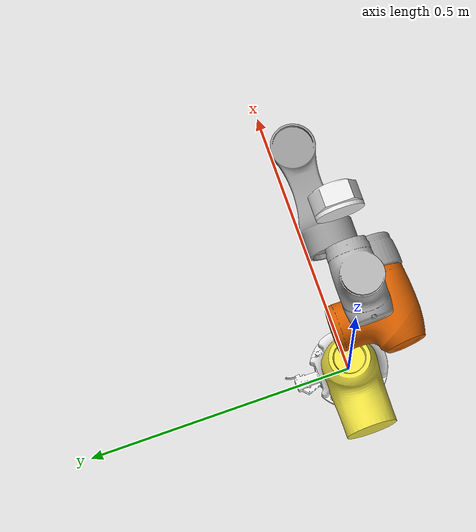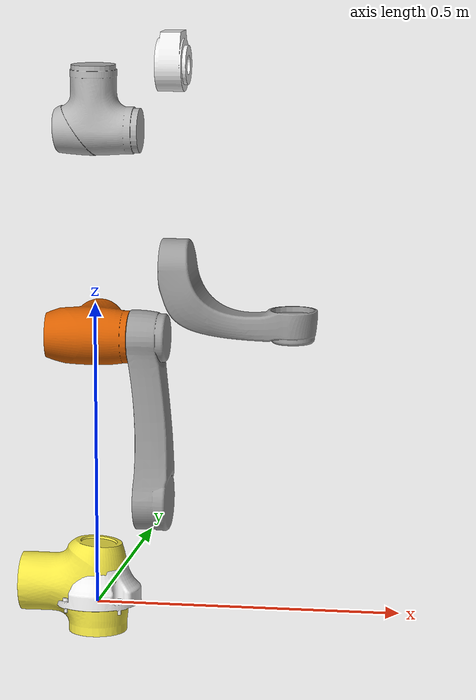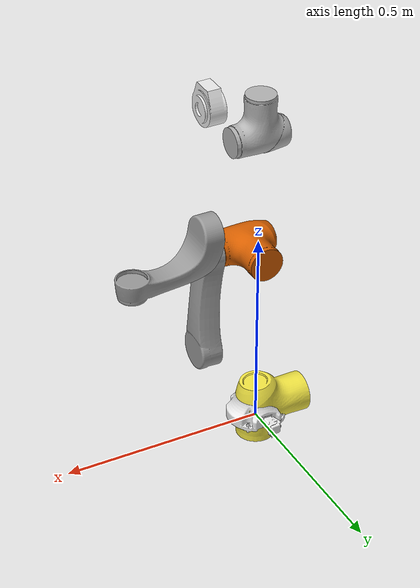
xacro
<robot
  name="elfin3" xmlns:xacro="http://www.ros.org/wiki/xacro">

  <xacro:include filename="$(find elfin_description)/urdf/materials.xacro" />

  <xacro:include filename="$(find elfin_description)/urdf/elfin_robot.gazebo" />

  <xacro:include filename="$(find elfin_description)/urdf/elfin_transmission.xacro" />

  <xacro:property name="PI" value="3.1415926535897931"/>

  <link name="world"/>

  <joint name="world_base" type="fixed">
    <origin
      xyz="0 0 0"
      rpy="0 0 0" />
    <parent
      link="world" />
    <child
      link="elfin_base_link" />
  </joint>

  <link name="elfin_base_link"/>

  <joint name="elfin_base_joint" type="fixed">
    <origin
      xyz="0 0 0"
      rpy="0 0 ${PI/2}" />
    <parent
      link="elfin_base_link" />
    <child
      link="elfin_base" />
  </joint>

  <link
    name="elfin_base">
    <inertial>
      <origin
        xyz="-0.0319402056221453 0.427120668618383 -5.39351164605318E-06"
        rpy="0 0 0" />
      <mass
        value="4.3052612459755" />
      <inertia
        ixx="0.291480854811486"
        ixy="-0.00222433961096429"
        ixz="-2.01923964457691E-06"
        iyy="0.0113685309214344"
        iyz="-3.62155285906403E-06"
        izz="0.298007263296196" />
    </inertial>
    <visual>
      <origin
        xyz="0 0 0"
        rpy="0 0 0" />
      <geometry>
        <mesh
          filename="package://elfin_description/meshes/elfin3/elfin_base.STL" />
      </geometry>
      <material
        name="metal_white"/>
    </visual>
    <collision>
      <origin
        xyz="0 0 0"
        rpy="0 0 0" />
      <geometry>
        <mesh
          filename="package://elfin_description/meshes/elfin3/elfin_base.STL" />
      </geometry>
    </collision>
  </link>
  <link
    name="elfin_link1">
    <inertial>
      <origin
        xyz="-0.0192918165822649 0.120142940373248 -9.33059379656128E-06"
        rpy="0 0 0" />
      <mass
        value="1.52637984956046" />
      <inertia
        ixx="0.00527544044696735"
        ixy="0.00123465778378514"
        ixz="-6.71312813911233E-07"
        iyy="0.00317642212936588"
        iyz="-3.23660070050034E-07"
        izz="0.00651212770034193" />
    </inertial>
    <visual>
      <origin
        xyz="0 0 0"
        rpy="0 0 0" />
      <geometry>
        <mesh
          filename="package://elfin_description/meshes/elfin3/elfin_link1.STL" />
      </geometry>
      <material
        name="metal"/>
    </visual>
    <collision>
      <origin
        xyz="0 0 0"
        rpy="0 0 0" />
      <geometry>
        <mesh
          filename="package://elfin_description/meshes/elfin3/elfin_link1.STL" />
      </geometry>
    </collision>
  </link>
  <joint
    name="elfin_joint1"
    type="revolute">
    <origin
      xyz="0 0 0.031"
      rpy="${PI/2} 0 0" />
    <parent
      link="elfin_base" />
    <child
      link="elfin_link1" />
    <axis
      xyz="0 1 0" />
    <dynamics
      damping="1"
      friction="1" />
    <limit
      lower="-6.283"
      upper="6.283"
      effort="120"
      velocity="1.57" />
  </joint>
  <link
    name="elfin_link2">
    <inertial>
      <origin
        xyz="-0.036466516774824 0.121897297057332 -2.81161718183357E-05"
        rpy="0 0 0" />
      <mass
        value="0.519454683951505" />
      <inertia
        ixx="0.00565995615696724"
        ixy="-0.000264286704227211"
        ixz="9.00238413174917E-08"
        iyy="0.000537503501646015"
        iyz="2.30075042384658E-06"
        izz="0.00546582402574428" />
    </inertial>
    <visual>
      <origin
        xyz="0 0 0"
        rpy="0 0 0" />
      <geometry>
        <mesh
          filename="package://elfin_description/meshes/elfin3/elfin_link2.STL" />
      </geometry>
      <material
        name="metal_grey"/>
    </visual>
    <collision>
      <origin
        xyz="0 0 0"
        rpy="0 0 0" />
      <geometry>
        <mesh
          filename="package://elfin_description/meshes/elfin3/elfin_link2.STL" />
      </geometry>
    </collision>
  </link>
  <joint
    name="elfin_joint2"
    type="revolute">
    <origin
      xyz="-0.068808 0.1615 0"
      rpy="0 0 0" />
    <parent
      link="elfin_link1" />
    <child
      link="elfin_link2" />
    <axis
      xyz="-1 0 0" />
    <dynamics
      damping="1"
      friction="1" />
    <limit
      lower="-6.283"
      upper="6.283"
      effort="120"
      velocity="1.57" />
  </joint>
  <link
    name="elfin_link3">
    <inertial>
      <origin
        xyz="0.0512991448419209 -0.0377654897323815 -7.04730066125333E-06"
        rpy="0 0 0" />
      <mass
        value="1.07922053966635" />
      <inertia
        ixx="0.00298738624023049"
        ixy="0.000725824493179576"
        ixz="4.96115488717236E-07"
        iyy="0.00183400941739145"
        iyz="-2.66433909735348E-07"
        izz="0.00375395532323906" />
    </inertial>
    <visual>
      <origin
        xyz="0 0 0"
        rpy="0 0 0" />
      <geometry>
        <mesh
          filename="package://elfin_description/meshes/elfin3/elfin_link3.STL" />
      </geometry>
      <material
        name="metal"/>
    </visual>
    <collision>
      <origin
        xyz="0 0 0"
        rpy="0 0 0" />
      <geometry>
        <mesh
          filename="package://elfin_description/meshes/elfin3/elfin_link3.STL" />
      </geometry>
    </collision>
  </link>
  <joint
    name="elfin_joint3"
    type="revolute">
    <origin
      xyz="0 0.266 0"
      rpy="${-PI} 0 0" />
    <parent
      link="elfin_link2" />
    <child
      link="elfin_link3" />
    <axis
      xyz="1 0 0" />
    <dynamics
      damping="1"
      friction="1" />
    <limit
      lower="-6.283"
      upper="6.283"
      effort="120"
      velocity="1.57" />
  </joint>
  <link
    name="elfin_link4">
    <inertial>
      <origin
        xyz="-0.0583601900884385 0.100119219162888 -3.33183498268088E-07"
        rpy="0 0 0" />
      <mass
        value="0.369677539276185" />
      <inertia
        ixx="0.00237292271100579"
        ixy="0.000824081879058636"
        ixz="-8.45848544546041E-09"
        iyy="0.000956009074525509"
        iyz="-3.93294162811061E-09"
        izz="0.00283923133217817" />
    </inertial>
    <visual>
      <origin
        xyz="0 0 0"
        rpy="0 0 0" />
      <geometry>
        <mesh
          filename="package://elfin_description/meshes/elfin3/elfin_link4.STL" />
      </geometry>
      <material
        name="metal_grey"/>
    </visual>
    <collision>
      <origin
        xyz="0 0 0"
        rpy="0 0 0" />
      <geometry>
        <mesh
          filename="package://elfin_description/meshes/elfin3/elfin_link4.STL" />
      </geometry>
    </collision>
  </link>
  <joint
    name="elfin_joint4"
    type="revolute">
    <origin
      xyz="0.068808 -0.10523 0"
      rpy="${PI} 0 0" />
    <parent
      link="elfin_link3" />
    <child
      link="elfin_link4" />
    <axis
      xyz="0 1 0" />
    <dynamics
      damping="1"
      friction="1" />
    <limit
      lower="-6.283"
      upper="6.283"
      effort="120"
      velocity="1.57" />
  </joint>
  <link
    name="elfin_link5">
    <inertial>
      <origin
        xyz="-0.0159268625326372 -0.0365461558991834 2.29158666616884E-06"
        rpy="0 0 0" />
      <mass
        value="0.81052865799498" />
      <inertia
        ixx="0.00195203104787827"
        ixy="0.000475249185078403"
        ixz="-4.08714933153791E-08"
        iyy="0.0011361781195507"
        iyz="1.7320616235908E-08"
        izz="0.00247459893149932" />
    </inertial>
    <visual>
      <origin
        xyz="0 0 0"
        rpy="0 0 0" />
      <geometry>
        <mesh
          filename="package://elfin_description/meshes/elfin3/elfin_link5.STL" />
      </geometry>
      <material
        name="metal"/>
    </visual>
    <collision>
      <origin
        xyz="0 0 0"
        rpy="0 0 0" />
      <geometry>
        <mesh
          filename="package://elfin_description/meshes/elfin3/elfin_link5.STL" />
      </geometry>
    </collision>
  </link>
  <joint
    name="elfin_joint5"
    type="revolute">
    <origin
      xyz="0 0.21877 0"
      rpy="${-PI} 0 0" />
    <parent
      link="elfin_link4" />
    <child
      link="elfin_link5" />
    <axis
      xyz="1 0 0" />
    <dynamics
      damping="1"
      friction="1" />
    <limit
      lower="-6.283"
      upper="6.283"
      effort="120"
      velocity="1.57" />
  </joint>
  <link
    name="elfin_link6">
    <inertial>
      <origin
        xyz="0.0219175619250529 0.461879324434722 -0.0232335370431645"
        rpy="0 0 0" />
      <mass
        value="4.3052612459755" />
      <inertia
        ixx="0.294935032119192"
        ixy="-0.0015239945221609"
        ixz="0.0032576119002927"
        iyy="0.0113685309214282"
        iyz="0.00162022853851308"
        izz="0.294553085988403" />
    </inertial>
    <visual>
      <origin
        xyz="0 0 0"
        rpy="0 0 0" />
      <geometry>
        <mesh
          filename="package://elfin_description/meshes/elfin3/elfin_link6.STL" />
      </geometry>
      <material
        name="metal_white"/>
    </visual>
    <collision>
      <origin
        xyz="0 0 0"
        rpy="0 0 0" />
      <geometry>
        <mesh
          filename="package://elfin_description/meshes/elfin3/elfin_link6.STL" />
      </geometry>
    </collision>
  </link>
  <joint
    name="elfin_joint6"
    type="revolute">
    <origin
      xyz="0 -0.1065 0"
      rpy="${-PI} 0 ${-PI}" />
    <parent
      link="elfin_link5" />
    <child
      link="elfin_link6" />
    <axis
      xyz="0 -1 0" />
    <dynamics
      damping="1"
      friction="1" />
    <limit
      lower="-6.283"
      upper="6.283"
      effort="120"
      velocity="1.57" />
  </joint>

  <link name="elfin_end_link"/>

  <joint name="elfin_end_joint" type="fixed">
    <origin
      xyz="0 -0.091 0"
      rpy="${PI/2} ${-PI/2} 0" />
    <parent
      link="elfin_link6" />
    <child
      link="elfin_end_link" />
  </joint>

  <link name="elfin_dummy_gripper"/>

  <joint name="elfin_dummy_joint" type="fixed">
    <origin
      xyz="0 -0.111 0"
      rpy="${PI/2} ${-PI/2} 0" />
    <parent
      link="elfin_link6" />
    <child
      link="elfin_dummy_gripper" />
  </joint>

  <!--Dummy links for additional collision volumes-->
  <joint name="elfin_joint1_a"
    type="fixed">
    <origin
      xyz="0.03 0.165 0"
      rpy="0 0 0" />
    <parent
      link="elfin_link1" />
    <child
      link="elfin_link1_a" />
  </joint>
  <link name="elfin_link1_a"/>

  <joint name="elfin_joint2_a"
    type="fixed">
    <origin
      xyz="-0.04 0.09 0"
      rpy="0 0 0" />
    <parent
      link="elfin_link2" />
    <child
      link="elfin_link2_a" />
  </joint>
  <link name="elfin_link2_a"/>

  <joint name="elfin_joint2_b"
    type="fixed">
    <origin
      xyz="-0.04 0.17 0"
      rpy="0 0 0" />
    <parent
      link="elfin_link2" />
    <child
      link="elfin_link2_b" />
  </joint>
  <link name="elfin_link2_b"/>

  <joint name="elfin_joint3_a"
    type="fixed">
    <origin
      xyz="0.085 0 0"
      rpy="0 0 0" />
    <parent
      link="elfin_link3" />
    <child
      link="elfin_link3_a" />
  </joint>
  <link name="elfin_link3_a"/>

  <joint name="elfin_joint4_a"
    type="fixed">
    <origin
      xyz="-0.08 0.07 0"
      rpy="0 0 0" />
    <parent
      link="elfin_link4" />
    <child
      link="elfin_link4_a" />
  </joint>
  <link name="elfin_link4_a"/>

  <joint name="elfin_joint4_b"
    type="fixed">
    <origin
      xyz="-0.095 0.14 0"
      rpy="0 0 0" />
    <parent
      link="elfin_link4" />
    <child
      link="elfin_link4_b" />
  </joint>
  <link name="elfin_link4_b"/>

  <joint name="elfin_joint4_c"
    type="fixed">
    <origin
      xyz="-0.09 0.22 0"
      rpy="0 0 0" />
    <parent
      link="elfin_link4" />
    <child
      link="elfin_link4_c" />
  </joint>
  <link name="elfin_link4_c"/>
</robot>
